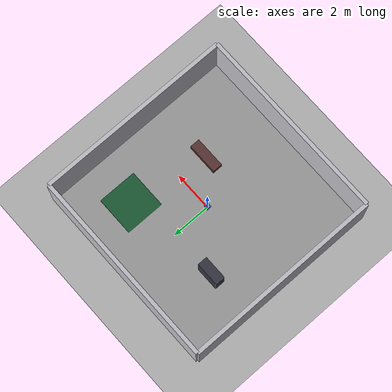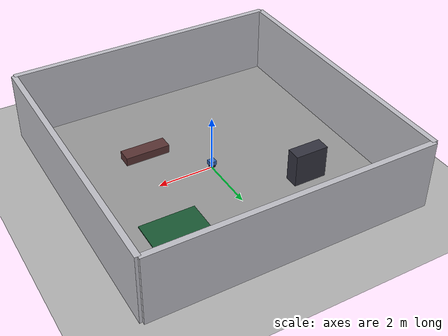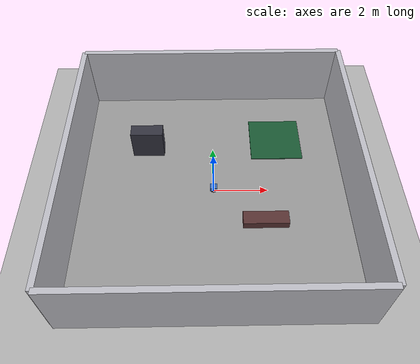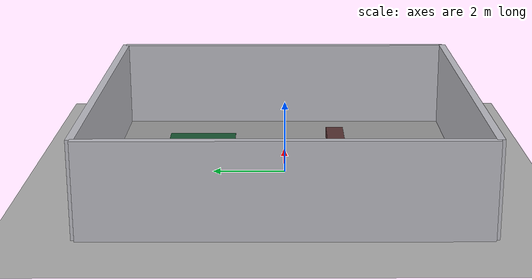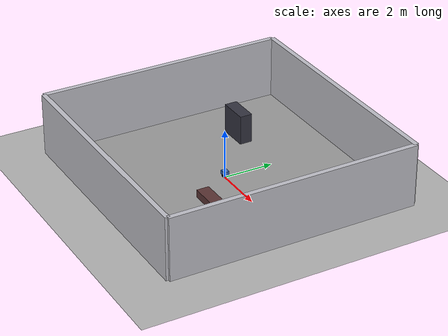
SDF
<?xml version="1.0" ?>
<sdf version="1.6">
  <world name="gym_world">
    <light name="sun" type="directional">
      <cast_shadows>true</cast_shadows>
      <pose>0 0 10 0 0 0</pose>
      <diffuse>1 1 1 1</diffuse>
      <specular>0.1 0.1 0.1 1</specular>
      <direction>-0.5 0.1 -1</direction>
    </light>

    <model name="ground_plane">
      <static>true</static>
      <pose>0 0 0 0 0 0</pose>
      <link name="link">
        <collision name="collision">
          <geometry>
            <plane>
              <normal>0 0 1</normal>
              <size>50 50</size>
            </plane>
          </geometry>
        </collision>
        <visual name="visual">
          <geometry>
            <plane>
              <normal>0 0 1</normal>
              <size>50 50</size>
            </plane>
          </geometry>
          <material>
            <ambient>0.7 0.7 0.7 1</ambient>
            <diffuse>0.7 0.7 0.7 1</diffuse>
          </material>
        </visual>
      </link>
    </model>
    <model name="floor_marker">
      <static>true</static>
      <pose>0 0 0 0 0 0</pose>
      <link name="link">
        <visual name="visual">
          <geometry>
            <box>
              <size>10 10 0.01</size>
            </box>
          </geometry>
          <material>
            <ambient>0.6 0.6 0.6 1</ambient>
            <diffuse>0.6 0.6 0.6 1</diffuse>
          </material>
        </visual>
      </link>
    </model>

    <model name="wall_north">
      <static>true</static>
      <pose>0 5 1.25 0 0 0</pose>
      <link name="link">
        <collision name="collision">
          <geometry>
            <box>
              <size>10 0.2 2.5</size>
            </box>
          </geometry>
        </collision>
        <visual name="visual">
          <geometry>
            <box>
              <size>10 0.2 2.5</size>
            </box>
          </geometry>
          <material>
            <ambient>0.75 0.75 0.78 1</ambient>
            <diffuse>0.75 0.75 0.78 1</diffuse>
          </material>
        </visual>
      </link>
    </model>

    <model name="wall_south">
      <static>true</static>
      <pose>0 -5 1.25 0 0 0</pose>
      <link name="link">
        <collision name="collision">
          <geometry>
            <box>
              <size>10 0.2 2.5</size>
            </box>
          </geometry>
        </collision>
        <visual name="visual">
          <geometry>
            <box>
              <size>10 0.2 2.5</size>
            </box>
          </geometry>
          <material>
            <ambient>0.75 0.75 0.78 1</ambient>
            <diffuse>0.75 0.75 0.78 1</diffuse>
          </material>
        </visual>
      </link>
    </model>

    <model name="wall_east">
      <static>true</static>
      <pose>5 0 1.25 0 0 0</pose>
      <link name="link">
        <collision name="collision">
          <geometry>
            <box>
              <size>0.2 10 2.5</size>
            </box>
          </geometry>
        </collision>
        <visual name="visual">
          <geometry>
            <box>
              <size>0.2 10 2.5</size>
            </box>
          </geometry>
          <material>
            <ambient>0.75 0.75 0.78 1</ambient>
            <diffuse>0.75 0.75 0.78 1</diffuse>
          </material>
        </visual>
      </link>
    </model>

    <model name="wall_west">
      <static>true</static>
      <pose>-5 0 1.25 0 0 0</pose>
      <link name="link">
        <collision name="collision">
          <geometry>
            <box>
              <size>0.2 10 2.5</size>
            </box>
          </geometry>
        </collision>
        <visual name="visual">
          <geometry>
            <box>
              <size>0.2 10 2.5</size>
            </box>
          </geometry>
          <material>
            <ambient>0.75 0.75 0.78 1</ambient>
            <diffuse>0.75 0.75 0.78 1</diffuse>
          </material>
        </visual>
      </link>
    </model>

    <model name="rack_1">
      <static>true</static>
      <pose>-2.5 2 0.6 0 0 0</pose>
      <link name="link">
        <collision name="collision">
          <geometry>
            <box>
              <size>1.2 0.5 1.2</size>
            </box>
          </geometry>
        </collision>
        <visual name="visual">
          <geometry>
            <box>
              <size>1.2 0.5 1.2</size>
            </box>
          </geometry>
          <material>
            <ambient>0.2 0.2 0.25 1</ambient>
            <diffuse>0.2 0.2 0.25 1</diffuse>
          </material>
        </visual>
      </link>
    </model>

    <model name="bench_1">
      <static>true</static>
      <pose>1.8 -1.5 0.35 0 0 0</pose>
      <link name="link">
        <collision name="collision">
          <geometry>
            <box>
              <size>1.6 0.5 0.3</size>
            </box>
          </geometry>
        </collision>
        <visual name="visual">
          <geometry>
            <box>
              <size>1.6 0.5 0.3</size>
            </box>
          </geometry>
          <material>
            <ambient>0.35 0.2 0.2 1</ambient>
            <diffuse>0.35 0.2 0.2 1</diffuse>
          </material>
        </visual>
      </link>
    </model>

    <model name="mat_zone">
      <static>true</static>
      <pose>2.5 2.5 0.02 0 0 0</pose>
      <link name="link">
        <visual name="visual">
          <geometry>
            <box>
              <size>2 2 0.04</size>
            </box>
          </geometry>
          <material>
            <ambient>0.1 0.35 0.2 1</ambient>
            <diffuse>0.1 0.35 0.2 1</diffuse>
          </material>
        </visual>
      </link>
    </model>

    <include>
      <uri>model://turtlebot3_burger</uri>
      <name>turtlebot3_burger</name>
      <pose>0 0 0.1 0 0 0</pose>
    </include>
  </world>
</sdf>

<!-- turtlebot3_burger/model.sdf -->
<sdf version="1.6">
  <model name="turtlebot3_burger">
    <static>false</static>
    <pose>0 0 0.1 0 0 0</pose>

    <link name="base_link">
      <inertial>
        <mass>4.0</mass>
        <inertia>
          <ixx>0.02</ixx>
          <iyy>0.02</iyy>
          <izz>0.04</izz>
        </inertia>
      </inertial>
      <collision name="collision">
        <geometry>
          <cylinder>
            <radius>0.12</radius>
            <length>0.06</length>
          </cylinder>
        </geometry>
      </collision>
      <visual name="visual">
        <geometry>
          <cylinder>
            <radius>0.12</radius>
            <length>0.06</length>
          </cylinder>
        </geometry>
        <material>
          <ambient>0.15 0.15 0.2 1</ambient>
          <diffuse>0.15 0.15 0.2 1</diffuse>
        </material>
      </visual>
    </link>

    <link name="body_link">
      <pose>0 0 0.12 0 0 0</pose>
      <collision name="collision">
        <geometry>
          <box>
            <size>0.25 0.22 0.15</size>
          </box>
        </geometry>
      </collision>
      <visual name="visual">
        <geometry>
          <box>
            <size>0.25 0.22 0.15</size>
          </box>
        </geometry>
        <material>
          <ambient>0.2 0.4 0.7 1</ambient>
          <diffuse>0.2 0.4 0.7 1</diffuse>
        </material>
      </visual>
    </link>

    <link name="camera_link">
      <pose>0.15 0 0.25 0 0 0</pose>
      <sensor name="camera" type="camera">
        <pose>0 0 0 0 0 0</pose>
        <camera>
          <horizontal_fov>1.047</horizontal_fov>
          <image>
            <width>640</width>
            <height>480</height>
            <format>R8G8B8</format>
          </image>
          <clip>
            <near>0.1</near>
            <far>50</far>
          </clip>
        </camera>
        <always_on>true</always_on>
        <update_rate>20</update_rate>
        <topic>/camera</topic>
      </sensor>
    </link>

    <joint name="body_joint" type="fixed">
      <parent>base_link</parent>
      <child>body_link</child>
    </joint>

    <joint name="camera_joint" type="fixed">
      <parent>base_link</parent>
      <child>camera_link</child>
    </joint>
  </model>
</sdf>
